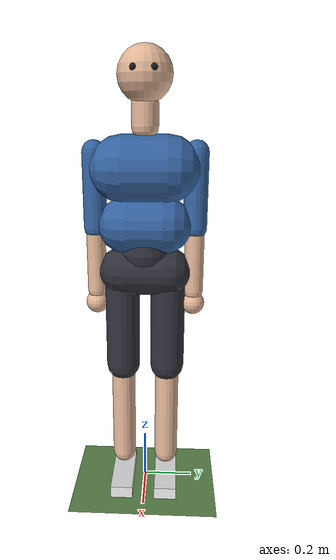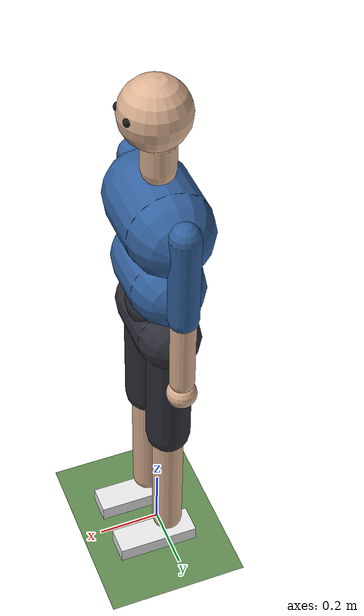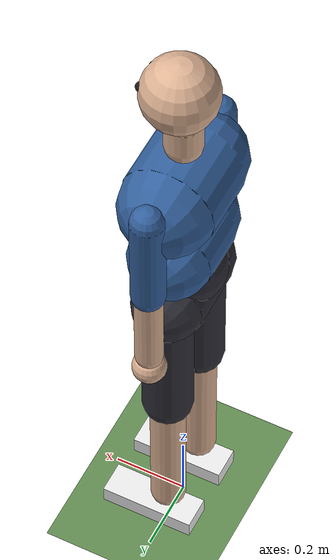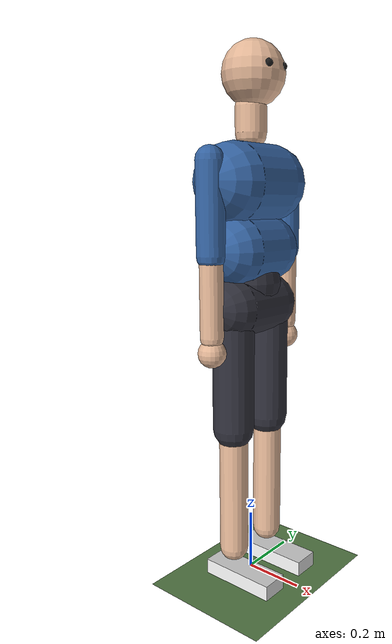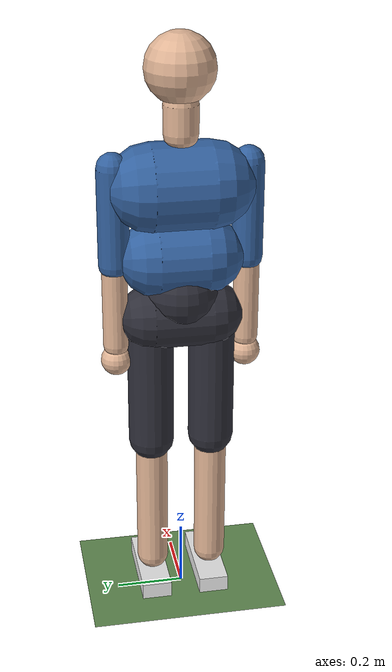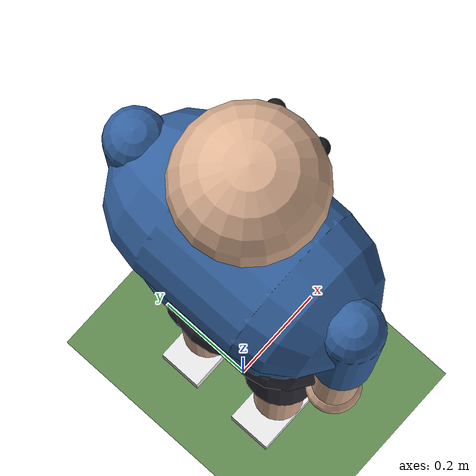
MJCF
<mujoco model="malecns_humanoid">
  <compiler angle="degree" autolimits="true"/>
  <option timestep="0.004" integrator="implicitfast"/>
  <size memory="4M"/>

  <visual>
    <global offwidth="1280" offheight="720"/>
    <quality shadowsize="4096"/>
    <headlight ambient="0.35 0.35 0.35" diffuse="0.5 0.5 0.5"/>
    <map znear="0.02"/>
  </visual>

  <asset>
    <texture name="sky" type="skybox" builtin="gradient" rgb1="0.55 0.7 0.9" rgb2="0.95 0.97 1" width="512" height="512"/>
    <texture name="grass" type="2d" builtin="checker" rgb1="0.36 0.52 0.30" rgb2="0.40 0.57 0.33" width="512" height="512"/>
    <material name="ground" texture="grass" texrepeat="40 40" reflectance="0.05"/>
    <material name="skin" rgba="0.87 0.70 0.58 1"/>
    <material name="shirt" rgba="0.20 0.38 0.62 1"/>
    <material name="shorts" rgba="0.18 0.18 0.22 1"/>
    <material name="shoe" rgba="0.92 0.92 0.92 1"/>
    <material name="eye" rgba="0.1 0.1 0.1 1"/>
  </asset>

  <default>
    <joint damping="2" armature="0.05" limited="true"/>
    <geom contype="2" conaffinity="1" condim="3" friction="1.0 0.02 0.01" solref="0.01 1"/>
    <site group="3" rgba="1 0 0 0.3"/>
    <position ctrllimited="true"/>
    <default class="hip">
      <position kp="300" kv="20" forcerange="-260 260"/>
    </default>
    <default class="hip_rot">
      <position kp="150" kv="8" forcerange="-150 150"/>
    </default>
    <default class="knee">
      <position kp="300" kv="15" forcerange="-300 300"/>
    </default>
    <default class="ankle">
      <position kp="300" kv="10" forcerange="-200 200"/>
    </default>
    <default class="ankle_inv">
      <position kp="120" kv="5" forcerange="-100 100"/>
    </default>
    <!-- legs collide with the other leg (and the world), as a real body's would -->
    <default class="leg_l">
      <geom contype="4" conaffinity="9"/>
    </default>
    <default class="leg_r">
      <geom contype="8" conaffinity="5"/>
    </default>
    <default class="spine">
      <position kp="400" kv="30" forcerange="-300 300"/>
    </default>
    <default class="shoulder">
      <position kp="60" kv="4" forcerange="-70 70"/>
    </default>
    <default class="elbow">
      <position kp="40" kv="3" forcerange="-45 45"/>
    </default>
  </default>

  <worldbody>
    <light name="sun" pos="0 0 6" dir="0.3 0.2 -1" directional="true" diffuse="0.7 0.7 0.7" castshadow="true"/>
    <geom name="floor" type="plane" size="0 0 0.05" material="ground" contype="1" conaffinity="1" friction="1.0 0.02 0.01"/>

    <body name="pelvis" pos="0 0 0.94">
      <freejoint name="root"/>
      <camera name="track" mode="trackcom" pos="0 -4.5 0.6" xyaxes="1 0 0 0 0.25 1"/>
      <camera name="side" mode="trackcom" pos="-1.5 -5.5 1.0" xyaxes="0.96 -0.26 0 0.06 0.2 1"/>
      <geom name="pelvis" type="capsule" fromto="0 -0.085 0 0 0.085 0" size="0.095" mass="5.2" material="shorts"/>
      <geom name="sacrum" type="sphere" pos="-0.01 0 0.075" size="0.105" mass="2.84" material="shorts"/>
      <site name="pelvis" pos="0 0 0"/>
      <site name="imu" pos="0 0 0.05" size="0.02"/>

      <!-- Spine: lumbar joint (L3) lumps lumbar + thoracic mobility -->
      <body name="torso" pos="0 0 0.11">
        <joint name="lumbar_bend" axis="1 0 0" range="-25 25"/>
        <joint name="lumbar_flex" axis="0 1 0" range="-25 45"/>
        <joint name="lumbar_twist" axis="0 0 1" range="-30 30"/>
        <geom name="abdomen" type="capsule" fromto="0 -0.07 0.07 0 0.07 0.07" size="0.11" mass="11.76" material="shirt"/>
        <geom name="thorax" type="capsule" fromto="0 -0.085 0.28 0 0.085 0.28" size="0.125" mass="11.5" material="shirt"/>
        <site name="torso" pos="0 0 0.2"/>

        <body name="head" pos="0 0 0.43">
          <geom name="neck" type="capsule" fromto="0 0 0 0 0 0.08" size="0.05" mass="1.0" material="skin"/>
          <geom name="skull" type="sphere" pos="0.01 0 0.175" size="0.1" mass="4.0" material="skin"/>
          <geom name="eye_l" type="sphere" pos="0.095 0.035 0.19" size="0.013" mass="0.001" material="eye" contype="0" conaffinity="0"/>
          <geom name="eye_r" type="sphere" pos="0.095 -0.035 0.19" size="0.013" mass="0.001" material="eye" contype="0" conaffinity="0"/>
          <site name="head" pos="0.01 0 0.175"/>
          <site name="mouth" pos="0.1 0 0.12" size="0.02"/>
          <!-- bilateral odour sensors, forward-facing like a fly's antennae -->
          <site name="antenna_l" pos="0.09 0.06 0.23" size="0.01"/>
          <site name="antenna_r" pos="0.09 -0.06 0.23" size="0.01"/>
          <camera name="eyes" pos="0.11 0 0.19" xyaxes="0 -1 0 0 0 1" fovy="100"/>
        </body>

        <body name="upper_arm_l" pos="0 0.19 0.34">
          <joint name="shoulder_flex_l" axis="0 -1 0" range="-60 170"/>
          <joint name="shoulder_abd_l" axis="1 0 0" range="-15 160"/>
          <joint name="shoulder_rot_l" axis="0 0 1" range="-80 80"/>
          <geom name="upper_arm_l" type="capsule" fromto="0 0 0 0 0 -0.28" size="0.045" mass="1.95" material="shirt"/>
          <body name="forearm_l" pos="0 0 -0.28">
            <joint name="elbow_l" axis="0 -1 0" range="0 150"/>
            <geom name="forearm_l" type="capsule" fromto="0 0 0 0 0 -0.25" size="0.037" mass="1.17" material="skin"/>
            <geom name="hand_l" type="sphere" pos="0 0 -0.3" size="0.045" mass="0.44" material="skin"/>
            <site name="hand_l" pos="0 0 -0.3" size="0.05"/>
          </body>
        </body>

        <body name="upper_arm_r" pos="0 -0.19 0.34">
          <joint name="shoulder_flex_r" axis="0 -1 0" range="-60 170"/>
          <joint name="shoulder_abd_r" axis="-1 0 0" range="-15 160"/>
          <joint name="shoulder_rot_r" axis="0 0 -1" range="-80 80"/>
          <geom name="upper_arm_r" type="capsule" fromto="0 0 0 0 0 -0.28" size="0.045" mass="1.95" material="shirt"/>
          <body name="forearm_r" pos="0 0 -0.28">
            <joint name="elbow_r" axis="0 -1 0" range="0 150"/>
            <geom name="forearm_r" type="capsule" fromto="0 0 0 0 0 -0.25" size="0.037" mass="1.17" material="skin"/>
            <geom name="hand_r" type="sphere" pos="0 0 -0.3" size="0.045" mass="0.44" material="skin"/>
            <site name="hand_r" pos="0 0 -0.3" size="0.05"/>
          </body>
        </body>
      </body>

      <!-- Left leg -->
      <body name="thigh_l" pos="0 0.09 0">
        <joint name="hip_flex_l" axis="0 -1 0" range="-30 120"/>
        <joint name="hip_abd_l" axis="1 0 0" range="-30 45"/>
        <joint name="hip_rot_l" axis="0 0 1" range="-45 45"/>
        <geom name="thigh_l" class="leg_l" type="capsule" fromto="0 0 -0.02 0 0 -0.40" size="0.068" mass="10.2" material="shorts"/>
        <body name="shank_l" pos="0 0 -0.422">
          <joint name="knee_l" axis="0 1 0" range="0 150"/>
          <geom name="shank_l" class="leg_l" type="capsule" fromto="0 0 -0.02 0 0 -0.40" size="0.048" mass="3.12" material="skin"/>
          <body name="foot_l" pos="0 0 -0.434">
            <joint name="ankle_flex_l" axis="0 -1 0" range="-50 30"/>
            <joint name="ankle_inv_l" axis="1 0 0" range="-25 25"/>
            <geom name="foot_l" class="leg_l" type="box" pos="0.045 0 -0.055" size="0.13 0.045 0.025" mass="0.99" material="shoe" friction="0.3 0.02 0.01"/>
            <site name="sole_l" type="box" pos="0.045 0 -0.075" size="0.135 0.05 0.015"/>
            <site name="foot_l" pos="0.045 0 -0.08"/>
          </body>
        </body>
      </body>

      <!-- Right leg -->
      <body name="thigh_r" pos="0 -0.09 0">
        <joint name="hip_flex_r" axis="0 -1 0" range="-30 120"/>
        <joint name="hip_abd_r" axis="-1 0 0" range="-30 45"/>
        <joint name="hip_rot_r" axis="0 0 -1" range="-45 45"/>
        <geom name="thigh_r" class="leg_r" type="capsule" fromto="0 0 -0.02 0 0 -0.40" size="0.068" mass="10.2" material="shorts"/>
        <body name="shank_r" pos="0 0 -0.422">
          <joint name="knee_r" axis="0 1 0" range="0 150"/>
          <geom name="shank_r" class="leg_r" type="capsule" fromto="0 0 -0.02 0 0 -0.40" size="0.048" mass="3.12" material="skin"/>
          <body name="foot_r" pos="0 0 -0.434">
            <joint name="ankle_flex_r" axis="0 -1 0" range="-50 30"/>
            <joint name="ankle_inv_r" axis="-1 0 0" range="-25 25"/>
            <geom name="foot_r" class="leg_r" type="box" pos="0.045 0 -0.055" size="0.13 0.045 0.025" mass="0.99" material="shoe" friction="0.3 0.02 0.01"/>
            <site name="sole_r" type="box" pos="0.045 0 -0.075" size="0.135 0.05 0.015"/>
            <site name="foot_r" pos="0.045 0 -0.08"/>
          </body>
        </body>
      </body>
    </body>
  </worldbody>

  <actuator>
    <!-- legs + spine: driven by the locomotion policy (order matters) -->
    <position name="lumbar_bend" joint="lumbar_bend" class="spine" inheritrange="1"/>
    <position name="lumbar_flex" joint="lumbar_flex" class="spine" inheritrange="1"/>
    <position name="lumbar_twist" joint="lumbar_twist" class="spine" inheritrange="1"/>
    <position name="hip_flex_l" joint="hip_flex_l" class="hip" inheritrange="1"/>
    <position name="hip_abd_l" joint="hip_abd_l" class="hip" inheritrange="1"/>
    <position name="hip_rot_l" joint="hip_rot_l" class="hip_rot" inheritrange="1"/>
    <position name="knee_l" joint="knee_l" class="knee" inheritrange="1"/>
    <position name="ankle_flex_l" joint="ankle_flex_l" class="ankle" inheritrange="1"/>
    <position name="ankle_inv_l" joint="ankle_inv_l" class="ankle_inv" inheritrange="1"/>
    <position name="hip_flex_r" joint="hip_flex_r" class="hip" inheritrange="1"/>
    <position name="hip_abd_r" joint="hip_abd_r" class="hip" inheritrange="1"/>
    <position name="hip_rot_r" joint="hip_rot_r" class="hip_rot" inheritrange="1"/>
    <position name="knee_r" joint="knee_r" class="knee" inheritrange="1"/>
    <position name="ankle_flex_r" joint="ankle_flex_r" class="ankle" inheritrange="1"/>
    <position name="ankle_inv_r" joint="ankle_inv_r" class="ankle_inv" inheritrange="1"/>
    <!-- arms: gait-coupled swing + feeding motor program -->
    <position name="shoulder_flex_l" joint="shoulder_flex_l" class="shoulder" inheritrange="1"/>
    <position name="shoulder_abd_l" joint="shoulder_abd_l" class="shoulder" inheritrange="1"/>
    <position name="shoulder_rot_l" joint="shoulder_rot_l" class="shoulder" inheritrange="1"/>
    <position name="elbow_l" joint="elbow_l" class="elbow" inheritrange="1"/>
    <position name="shoulder_flex_r" joint="shoulder_flex_r" class="shoulder" inheritrange="1"/>
    <position name="shoulder_abd_r" joint="shoulder_abd_r" class="shoulder" inheritrange="1"/>
    <position name="shoulder_rot_r" joint="shoulder_rot_r" class="shoulder" inheritrange="1"/>
    <position name="elbow_r" joint="elbow_r" class="elbow" inheritrange="1"/>
  </actuator>

  <sensor>
    <gyro name="imu_gyro" site="imu"/>
    <accelerometer name="imu_acc" site="imu"/>
    <framequat name="imu_quat" objtype="site" objname="imu"/>
    <touch name="sole_l" site="sole_l"/>
    <touch name="sole_r" site="sole_r"/>
    <framepos name="foot_l_pos" objtype="site" objname="foot_l"/>
    <framepos name="foot_r_pos" objtype="site" objname="foot_r"/>
    <framelinvel name="foot_l_vel" objtype="site" objname="foot_l"/>
    <framelinvel name="foot_r_vel" objtype="site" objname="foot_r"/>
    <framezaxis name="torso_up" objtype="site" objname="torso"/>
    <framezaxis name="foot_l_up" objtype="site" objname="foot_l"/>
    <framezaxis name="foot_r_up" objtype="site" objname="foot_r"/>
    <framepos name="head_pos" objtype="site" objname="head"/>
    <subtreecom name="com" body="pelvis"/>
    <subtreelinvel name="com_vel" body="pelvis"/>
    <framepos name="hand_l_pos" objtype="site" objname="hand_l"/>
    <framepos name="hand_r_pos" objtype="site" objname="hand_r"/>
    <actuatorfrc name="tau_lumbar_bend" actuator="lumbar_bend"/>
    <actuatorfrc name="tau_lumbar_flex" actuator="lumbar_flex"/>
    <actuatorfrc name="tau_lumbar_twist" actuator="lumbar_twist"/>
    <actuatorfrc name="tau_hip_flex_l" actuator="hip_flex_l"/>
    <actuatorfrc name="tau_hip_abd_l" actuator="hip_abd_l"/>
    <actuatorfrc name="tau_hip_rot_l" actuator="hip_rot_l"/>
    <actuatorfrc name="tau_knee_l" actuator="knee_l"/>
    <actuatorfrc name="tau_ankle_flex_l" actuator="ankle_flex_l"/>
    <actuatorfrc name="tau_ankle_inv_l" actuator="ankle_inv_l"/>
    <actuatorfrc name="tau_hip_flex_r" actuator="hip_flex_r"/>
    <actuatorfrc name="tau_hip_abd_r" actuator="hip_abd_r"/>
    <actuatorfrc name="tau_hip_rot_r" actuator="hip_rot_r"/>
    <actuatorfrc name="tau_knee_r" actuator="knee_r"/>
    <actuatorfrc name="tau_ankle_flex_r" actuator="ankle_flex_r"/>
    <actuatorfrc name="tau_ankle_inv_r" actuator="ankle_inv_r"/>
    <actuatorfrc name="tau_shoulder_flex_l" actuator="shoulder_flex_l"/>
    <actuatorfrc name="tau_shoulder_abd_l" actuator="shoulder_abd_l"/>
    <actuatorfrc name="tau_shoulder_rot_l" actuator="shoulder_rot_l"/>
    <actuatorfrc name="tau_elbow_l" actuator="elbow_l"/>
    <actuatorfrc name="tau_shoulder_flex_r" actuator="shoulder_flex_r"/>
    <actuatorfrc name="tau_shoulder_abd_r" actuator="shoulder_abd_r"/>
    <actuatorfrc name="tau_shoulder_rot_r" actuator="shoulder_rot_r"/>
    <actuatorfrc name="tau_elbow_r" actuator="elbow_r"/>
  </sensor>
</mujoco>
